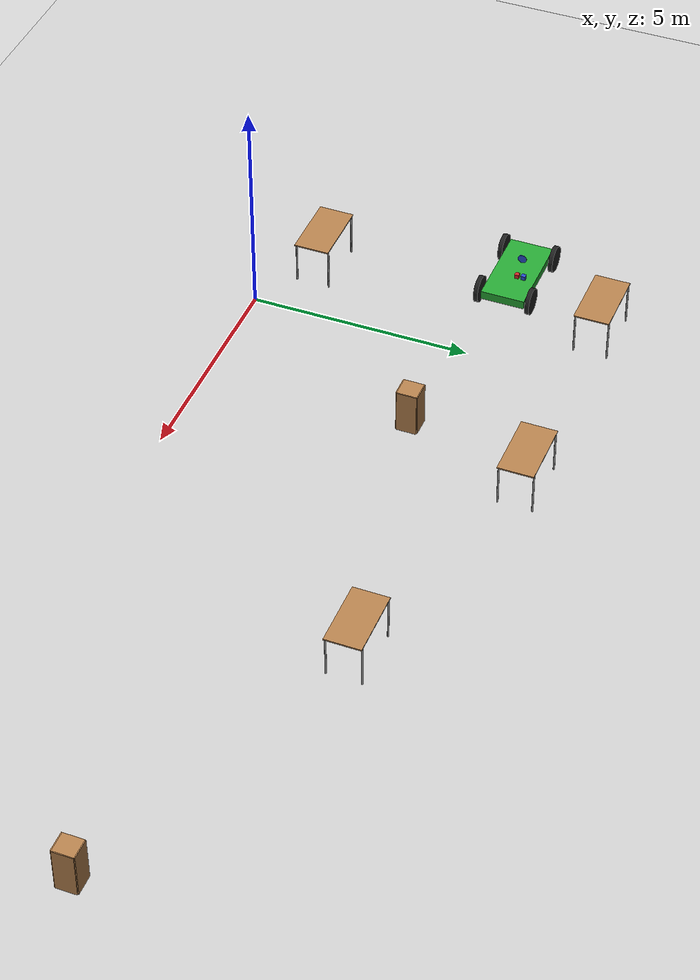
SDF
<sdf version="1.6">
 <world name="default">
  <model name="ground_plane">
   <static>1</static>
   <link name="link">
    <collision name="collision">
     <geometry><plane><normal>0 0 1</normal><size>100 100</size></plane></geometry>
     <surface>
      <contact><collide_bitmask>65535</collide_bitmask></contact>
      <friction><ode><mu>100</mu><mu2>50</mu2></ode></friction>
     </surface>
    </collision>
    <visual name="visual">
     <cast_shadows>0</cast_shadows>
     <geometry><plane><normal>0 0 1</normal><size>100 100</size></plane></geometry>
     <material>
      <script><uri>file://media/materials/scripts/gazebo.material</uri><name>Gazebo/Grey</name></script>
     </material>
    </visual>
   </link>
  </model>
  <model name="table">
   <static>1</static>
   <link name="link">
    <collision name="surface">
     <pose>0 0 1 0 -0 0</pose>
     <geometry><box><size>1.5 0.8 0.03</size></box></geometry>
     <surface><friction><ode><mu>0.6</mu><mu2>0.6</mu2></ode></friction></surface>
    </collision>
    <visual name="visual1">
     <pose>0 0 1 0 -0 0</pose>
     <geometry><box><size>1.5 0.8 0.03</size></box></geometry>
     <material>
      <script><uri>file://media/materials/scripts/gazebo.material</uri><name>Gazebo/Wood</name></script>
     </material>
    </visual>
    <collision name="front_left_leg">
     <pose>0.68 0.38 0.5 0 -0 0</pose>
     <geometry><cylinder><radius>0.02</radius><length>1</length></cylinder></geometry>
    </collision>
    <visual name="front_left_leg">
     <pose>0.68 0.38 0.5 0 -0 0</pose>
     <geometry><cylinder><radius>0.02</radius><length>1</length></cylinder></geometry>
     <material>
      <script><uri>file://media/materials/scripts/gazebo.material</uri><name>Gazebo/Grey</name></script>
     </material>
    </visual>
    <collision name="front_right_leg">
     <pose>0.68 -0.38 0.5 0 -0 0</pose>
     <geometry><cylinder><radius>0.02</radius><length>1</length></cylinder></geometry>
    </collision>
    <visual name="front_right_leg">
     <pose>0.68 -0.38 0.5 0 -0 0</pose>
     <geometry><cylinder><radius>0.02</radius><length>1</length></cylinder></geometry>
     <material>
      <script><uri>file://media/materials/scripts/gazebo.material</uri><name>Gazebo/Grey</name></script>
     </material>
    </visual>
    <collision name="back_right_leg">
     <pose>-0.68 -0.38 0.5 0 -0 0</pose>
     <geometry><cylinder><radius>0.02</radius><length>1</length></cylinder></geometry>
    </collision>
    <visual name="back_right_leg">
     <pose>-0.68 -0.38 0.5 0 -0 0</pose>
     <geometry><cylinder><radius>0.02</radius><length>1</length></cylinder></geometry>
     <material>
      <script><uri>file://media/materials/scripts/gazebo.material</uri><name>Gazebo/Grey</name></script>
     </material>
    </visual>
    <collision name="back_left_leg">
     <pose>-0.68 0.38 0.5 0 -0 0</pose>
     <geometry><cylinder><radius>0.02</radius><length>1</length></cylinder></geometry>
    </collision>
    <visual name="back_left_leg">
     <pose>-0.68 0.38 0.5 0 -0 0</pose>
     <geometry><cylinder><radius>0.02</radius><length>1</length></cylinder></geometry>
     <material>
      <script><uri>file://media/materials/scripts/gazebo.material</uri><name>Gazebo/Grey</name></script>
     </material>
    </visual>
   </link>
   <pose>9.1892 6.14459 0 0 -0 0</pose>
  </model>
  <model name="table_0">
   <static>1</static>
   <link name="link">
    <collision name="surface">
     <pose>0 0 1 0 -0 0</pose>
     <geometry><box><size>1.5 0.8 0.03</size></box></geometry>
     <surface><friction><ode><mu>0.6</mu><mu2>0.6</mu2></ode></friction></surface>
    </collision>
    <visual name="visual1">
     <pose>0 0 1 0 -0 0</pose>
     <geometry><box><size>1.5 0.8 0.03</size></box></geometry>
     <material>
      <script><uri>file://media/materials/scripts/gazebo.material</uri><name>Gazebo/Wood</name></script>
     </material>
    </visual>
    <collision name="front_left_leg">
     <pose>0.68 0.38 0.5 0 -0 0</pose>
     <geometry><cylinder><radius>0.02</radius><length>1</length></cylinder></geometry>
    </collision>
    <visual name="front_left_leg">
     <pose>0.68 0.38 0.5 0 -0 0</pose>
     <geometry><cylinder><radius>0.02</radius><length>1</length></cylinder></geometry>
     <material>
      <script><uri>file://media/materials/scripts/gazebo.material</uri><name>Gazebo/Grey</name></script>
     </material>
    </visual>
    <collision name="front_right_leg">
     <pose>0.68 -0.38 0.5 0 -0 0</pose>
     <geometry><cylinder><radius>0.02</radius><length>1</length></cylinder></geometry>
    </collision>
    <visual name="front_right_leg">
     <pose>0.68 -0.38 0.5 0 -0 0</pose>
     <geometry><cylinder><radius>0.02</radius><length>1</length></cylinder></geometry>
     <material>
      <script><uri>file://media/materials/scripts/gazebo.material</uri><name>Gazebo/Grey</name></script>
     </material>
    </visual>
    <collision name="back_right_leg">
     <pose>-0.68 -0.38 0.5 0 -0 0</pose>
     <geometry><cylinder><radius>0.02</radius><length>1</length></cylinder></geometry>
    </collision>
    <visual name="back_right_leg">
     <pose>-0.68 -0.38 0.5 0 -0 0</pose>
     <geometry><cylinder><radius>0.02</radius><length>1</length></cylinder></geometry>
     <material>
      <script><uri>file://media/materials/scripts/gazebo.material</uri><name>Gazebo/Grey</name></script>
     </material>
    </visual>
    <collision name="back_left_leg">
     <pose>-0.68 0.38 0.5 0 -0 0</pose>
     <geometry><cylinder><radius>0.02</radius><length>1</length></cylinder></geometry>
    </collision>
    <visual name="back_left_leg">
     <pose>-0.68 0.38 0.5 0 -0 0</pose>
     <geometry><cylinder><radius>0.02</radius><length>1</length></cylinder></geometry>
     <material>
      <script><uri>file://media/materials/scripts/gazebo.material</uri><name>Gazebo/Grey</name></script>
     </material>
    </visual>
   </link>
   <pose>3.46425 7.5995 0 0 -0 0</pose>
  </model>
  <model name="table_1">
   <static>1</static>
   <link name="link">
    <collision name="surface">
     <pose>0 0 1 0 -0 0</pose>
     <geometry><box><size>1.5 0.8 0.03</size></box></geometry>
     <surface><friction><ode><mu>0.6</mu><mu2>0.6</mu2></ode></friction></surface>
    </collision>
    <visual name="visual1">
     <pose>0 0 1 0 -0 0</pose>
     <geometry><box><size>1.5 0.8 0.03</size></box></geometry>
     <material>
      <script><uri>file://media/materials/scripts/gazebo.material</uri><name>Gazebo/Wood</name></script>
     </material>
    </visual>
    <collision name="front_left_leg">
     <pose>0.68 0.38 0.5 0 -0 0</pose>
     <geometry><cylinder><radius>0.02</radius><length>1</length></cylinder></geometry>
    </collision>
    <visual name="front_left_leg">
     <pose>0.68 0.38 0.5 0 -0 0</pose>
     <geometry><cylinder><radius>0.02</radius><length>1</length></cylinder></geometry>
     <material>
      <script><uri>file://media/materials/scripts/gazebo.material</uri><name>Gazebo/Grey</name></script>
     </material>
    </visual>
    <collision name="front_right_leg">
     <pose>0.68 -0.38 0.5 0 -0 0</pose>
     <geometry><cylinder><radius>0.02</radius><length>1</length></cylinder></geometry>
    </collision>
    <visual name="front_right_leg">
     <pose>0.68 -0.38 0.5 0 -0 0</pose>
     <geometry><cylinder><radius>0.02</radius><length>1</length></cylinder></geometry>
     <material>
      <script><uri>file://media/materials/scripts/gazebo.material</uri><name>Gazebo/Grey</name></script>
     </material>
    </visual>
    <collision name="back_right_leg">
     <pose>-0.68 -0.38 0.5 0 -0 0</pose>
     <geometry><cylinder><radius>0.02</radius><length>1</length></cylinder></geometry>
    </collision>
    <visual name="back_right_leg">
     <pose>-0.68 -0.38 0.5 0 -0 0</pose>
     <geometry><cylinder><radius>0.02</radius><length>1</length></cylinder></geometry>
     <material>
      <script><uri>file://media/materials/scripts/gazebo.material</uri><name>Gazebo/Grey</name></script>
     </material>
    </visual>
    <collision name="back_left_leg">
     <pose>-0.68 0.38 0.5 0 -0 0</pose>
     <geometry><cylinder><radius>0.02</radius><length>1</length></cylinder></geometry>
    </collision>
    <visual name="back_left_leg">
     <pose>-0.68 0.38 0.5 0 -0 0</pose>
     <geometry><cylinder><radius>0.02</radius><length>1</length></cylinder></geometry>
     <material>
      <script><uri>file://media/materials/scripts/gazebo.material</uri><name>Gazebo/Grey</name></script>
     </material>
    </visual>
   </link>
   <pose>-1.66816 7.51527 0 0 -0 0</pose>
  </model>
  <model name="table_2">
   <static>1</static>
   <link name="link">
    <collision name="surface">
     <pose>0 0 1 0 -0 0</pose>
     <geometry><box><size>1.5 0.8 0.03</size></box></geometry>
     <surface><friction><ode><mu>0.6</mu><mu2>0.6</mu2></ode></friction></surface>
    </collision>
    <visual name="visual1">
     <pose>0 0 1 0 -0 0</pose>
     <geometry><box><size>1.5 0.8 0.03</size></box></geometry>
     <material>
      <script><uri>file://media/materials/scripts/gazebo.material</uri><name>Gazebo/Wood</name></script>
     </material>
    </visual>
    <collision name="front_left_leg">
     <pose>0.68 0.38 0.5 0 -0 0</pose>
     <geometry><cylinder><radius>0.02</radius><length>1</length></cylinder></geometry>
    </collision>
    <visual name="front_left_leg">
     <pose>0.68 0.38 0.5 0 -0 0</pose>
     <geometry><cylinder><radius>0.02</radius><length>1</length></cylinder></geometry>
     <material>
      <script><uri>file://media/materials/scripts/gazebo.material</uri><name>Gazebo/Grey</name></script>
     </material>
    </visual>
    <collision name="front_right_leg">
     <pose>0.68 -0.38 0.5 0 -0 0</pose>
     <geometry><cylinder><radius>0.02</radius><length>1</length></cylinder></geometry>
    </collision>
    <visual name="front_right_leg">
     <pose>0.68 -0.38 0.5 0 -0 0</pose>
     <geometry><cylinder><radius>0.02</radius><length>1</length></cylinder></geometry>
     <material>
      <script><uri>file://media/materials/scripts/gazebo.material</uri><name>Gazebo/Grey</name></script>
     </material>
    </visual>
    <collision name="back_right_leg">
     <pose>-0.68 -0.38 0.5 0 -0 0</pose>
     <geometry><cylinder><radius>0.02</radius><length>1</length></cylinder></geometry>
    </collision>
    <visual name="back_right_leg">
     <pose>-0.68 -0.38 0.5 0 -0 0</pose>
     <geometry><cylinder><radius>0.02</radius><length>1</length></cylinder></geometry>
     <material>
      <script><uri>file://media/materials/scripts/gazebo.material</uri><name>Gazebo/Grey</name></script>
     </material>
    </visual>
    <collision name="back_left_leg">
     <pose>-0.68 0.38 0.5 0 -0 0</pose>
     <geometry><cylinder><radius>0.02</radius><length>1</length></cylinder></geometry>
    </collision>
    <visual name="back_left_leg">
     <pose>-0.68 0.38 0.5 0 -0 0</pose>
     <geometry><cylinder><radius>0.02</radius><length>1</length></cylinder></geometry>
     <material>
      <script><uri>file://media/materials/scripts/gazebo.material</uri><name>Gazebo/Grey</name></script>
     </material>
    </visual>
   </link>
   <pose>-1.69244 0.969496 0 0 -0 0</pose>
  </model>
  <model name="cabinet">
   <static>1</static>
   <link name="cabinet_bottom_plate">
    <inertial>
     <pose>0 0 -1 0 -0 0</pose>
     <inertia><ixx>2.05</ixx><ixy>0</ixy><ixz>0</ixz><iyy>2.05</iyy><iyz>0</iyz><izz>2.05</izz></inertia>
     <mass>25</mass>
    </inertial>
    <collision name="cabinet_bottom_plate_geom">
     <pose>0 0 0.01 0 -0 0</pose>
     <geometry><box><size>0.45 0.45 0.02</size></box></geometry>
    </collision>
    <visual name="cabinet_bottom_plate_geom_visual">
     <pose>0 0 0.01 0 -0 0</pose>
     <geometry><box><size>0.45 0.45 0.02</size></box></geometry>
     <material>
      <script><uri>file://media/materials/scripts/gazebo.material</uri><name>Gazebo/Wood</name></script>
     </material>
    </visual>
    <collision name="cabinet_bottom_plate_geom_cabinet_back_plate">
     <pose>0.235 0 0.51 0 -0 0</pose>
     <geometry><box><size>0.02 0.45 1.02</size></box></geometry>
    </collision>
    <visual name="cabinet_bottom_plate_geom_cabinet_back_plate_visual">
     <pose>0.235 0 0.51 0 -0 0</pose>
     <geometry><box><size>0.02 0.45 1.02</size></box></geometry>
     <material>
      <script><uri>file://media/materials/scripts/gazebo.material</uri><name>Gazebo/Wood</name></script>
     </material>
    </visual>
    <collision name="cabinet_bottom_plate_geom_cabinet_left_plate">
     <pose>0 0.235 0.51 0 -0 0</pose>
     <geometry><box><size>0.45 0.02 1.02</size></box></geometry>
    </collision>
    <visual name="cabinet_bottom_plate_geom_cabinet_left_plate_visual">
     <pose>0 0.235 0.51 0 -0 0</pose>
     <geometry><box><size>0.45 0.02 1.02</size></box></geometry>
     <material>
      <script><uri>file://media/materials/scripts/gazebo.material</uri><name>Gazebo/Wood</name></script>
     </material>
    </visual>
    <collision name="cabinet_bottom_plate_geom_cabinet_middle_plate">
     <pose>0 0 0.51 0 -0 0</pose>
     <geometry><box><size>0.45 0.45 0.02</size></box></geometry>
    </collision>
    <visual name="cabinet_bottom_plate_geom_cabinet_middle_plate_visual">
     <pose>0 0 0.51 0 -0 0</pose>
     <geometry><box><size>0.45 0.45 0.02</size></box></geometry>
     <material>
      <script><uri>file://media/materials/scripts/gazebo.material</uri><name>Gazebo/Wood</name></script>
     </material>
    </visual>
    <collision name="cabinet_bottom_plate_geom_cabinet_right_plate">
     <pose>0 -0.235 0.51 0 -0 0</pose>
     <geometry><box><size>0.45 0.02 1.02</size></box></geometry>
    </collision>
    <visual name="cabinet_bottom_plate_geom_cabinet_right_plate_visual">
     <pose>0 -0.235 0.51 0 -0 0</pose>
     <geometry><box><size>0.45 0.02 1.02</size></box></geometry>
     <material>
      <script><uri>file://media/materials/scripts/gazebo.material</uri><name>Gazebo/Wood</name></script>
     </material>
    </visual>
    <collision name="cabinet_bottom_plate_geom_cabinet_top_plate">
     <pose>0 0 1.01 0 -0 0</pose>
     <geometry><box><size>0.45 0.45 0.02</size></box></geometry>
    </collision>
    <visual name="cabinet_bottom_plate_geom_cabinet_top_plate_visual">
     <pose>0 0 1.01 0 -0 0</pose>
     <geometry><box><size>0.45 0.45 0.02</size></box></geometry>
     <material>
      <script><uri>file://media/materials/scripts/gazebo.material</uri><name>Gazebo/Wood</name></script>
     </material>
    </visual>
   </link>
   <pose>16.2359 3.47338 0 0 -0 0</pose>
  </model>
  <model name="cabinet_1">
   <static>1</static>
   <link name="cabinet_bottom_plate">
    <inertial>
     <pose>0 0 -1 0 -0 0</pose>
     <inertia><ixx>2.05</ixx><ixy>0</ixy><ixz>0</ixz><iyy>2.05</iyy><iyz>0</iyz><izz>2.05</izz></inertia>
     <mass>25</mass>
    </inertial>
    <collision name="cabinet_bottom_plate_geom">
     <pose>0 0 0.01 0 -0 0</pose>
     <geometry><box><size>0.45 0.45 0.02</size></box></geometry>
    </collision>
    <visual name="cabinet_bottom_plate_geom_visual">
     <pose>0 0 0.01 0 -0 0</pose>
     <geometry><box><size>0.45 0.45 0.02</size></box></geometry>
     <material>
      <script><uri>file://media/materials/scripts/gazebo.material</uri><name>Gazebo/Wood</name></script>
     </material>
    </visual>
    <collision name="cabinet_bottom_plate_geom_cabinet_back_plate">
     <pose>0.235 0 0.51 0 -0 0</pose>
     <geometry><box><size>0.02 0.45 1.02</size></box></geometry>
    </collision>
    <visual name="cabinet_bottom_plate_geom_cabinet_back_plate_visual">
     <pose>0.235 0 0.51 0 -0 0</pose>
     <geometry><box><size>0.02 0.45 1.02</size></box></geometry>
     <material>
      <script><uri>file://media/materials/scripts/gazebo.material</uri><name>Gazebo/Wood</name></script>
     </material>
    </visual>
    <collision name="cabinet_bottom_plate_geom_cabinet_left_plate">
     <pose>0 0.235 0.51 0 -0 0</pose>
     <geometry><box><size>0.45 0.02 1.02</size></box></geometry>
    </collision>
    <visual name="cabinet_bottom_plate_geom_cabinet_left_plate_visual">
     <pose>0 0.235 0.51 0 -0 0</pose>
     <geometry><box><size>0.45 0.02 1.02</size></box></geometry>
     <material>
      <script><uri>file://media/materials/scripts/gazebo.material</uri><name>Gazebo/Wood</name></script>
     </material>
    </visual>
    <collision name="cabinet_bottom_plate_geom_cabinet_middle_plate">
     <pose>0 0 0.51 0 -0 0</pose>
     <geometry><box><size>0.45 0.45 0.02</size></box></geometry>
    </collision>
    <visual name="cabinet_bottom_plate_geom_cabinet_middle_plate_visual">
     <pose>0 0 0.51 0 -0 0</pose>
     <geometry><box><size>0.45 0.45 0.02</size></box></geometry>
     <material>
      <script><uri>file://media/materials/scripts/gazebo.material</uri><name>Gazebo/Wood</name></script>
     </material>
    </visual>
    <collision name="cabinet_bottom_plate_geom_cabinet_right_plate">
     <pose>0 -0.235 0.51 0 -0 0</pose>
     <geometry><box><size>0.45 0.02 1.02</size></box></geometry>
    </collision>
    <visual name="cabinet_bottom_plate_geom_cabinet_right_plate_visual">
     <pose>0 -0.235 0.51 0 -0 0</pose>
     <geometry><box><size>0.45 0.02 1.02</size></box></geometry>
     <material>
      <script><uri>file://media/materials/scripts/gazebo.material</uri><name>Gazebo/Wood</name></script>
     </material>
    </visual>
    <collision name="cabinet_bottom_plate_geom_cabinet_top_plate">
     <pose>0 0 1.01 0 -0 0</pose>
     <geometry><box><size>0.45 0.45 0.02</size></box></geometry>
    </collision>
    <visual name="cabinet_bottom_plate_geom_cabinet_top_plate_visual">
     <pose>0 0 1.01 0 -0 0</pose>
     <geometry><box><size>0.45 0.45 0.02</size></box></geometry>
     <material>
      <script><uri>file://media/materials/scripts/gazebo.material</uri><name>Gazebo/Wood</name></script>
     </material>
    </visual>
   </link>
   <pose>2.61051 4.70363 0 0 -0 0</pose>
  </model>
  <model name="car">
   <link name="chassis">
    <pose>0 0 0.3 0 -0 0</pose>
    <collision name="collision"><geometry><box><size>2 1 0.2</size></box></geometry></collision>
    <visual name="visual">
     <geometry><box><size>2 1 0.2</size></box></geometry>
     <material>
      <script><uri>file://media/materials/scripts/gazebo.material</uri><name>Gazebo/Green</name></script>
     </material>
    </visual>
    <inertial>
     <inertia><ixx>1</ixx><ixy>0</ixy><ixz>0</ixz><iyy>1</iyy><iyz>0</iyz><izz>1</izz></inertia>
     <mass>1</mass>
    </inertial>
   </link>
   <link name="front_left_wheel">
    <pose>0.8 0.6 0.3 -0 1.5707 1.5707</pose>
    <collision name="collision">
     <geometry><cylinder><radius>0.3</radius><length>0.1</length></cylinder></geometry>
    </collision>
    <visual name="visual">
     <geometry><cylinder><radius>0.3</radius><length>0.1</length></cylinder></geometry>
     <material>
      <script><uri>file://media/materials/scripts/gazebo.material</uri><name>Gazebo/Black</name></script>
     </material>
    </visual>
    <inertial>
     <inertia><ixx>1</ixx><ixy>0</ixy><ixz>0</ixz><iyy>1</iyy><iyz>0</iyz><izz>1</izz></inertia>
     <mass>1</mass>
    </inertial>
   </link>
   <link name="front_right_wheel">
    <pose>0.8 -0.6 0.3 -0 1.5707 1.5707</pose>
    <collision name="collision">
     <geometry><cylinder><radius>0.3</radius><length>0.1</length></cylinder></geometry>
    </collision>
    <visual name="visual">
     <geometry><cylinder><radius>0.3</radius><length>0.1</length></cylinder></geometry>
     <material>
      <script><uri>file://media/materials/scripts/gazebo.material</uri><name>Gazebo/Black</name></script>
     </material>
    </visual>
    <inertial>
     <inertia><ixx>1</ixx><ixy>0</ixy><ixz>0</ixz><iyy>1</iyy><iyz>0</iyz><izz>1</izz></inertia>
     <mass>1</mass>
    </inertial>
   </link>
   <link name="back_right_wheel">
    <pose>-0.8 -0.6 0.3 -0 1.5707 1.5707</pose>
    <collision name="collision">
     <geometry><cylinder><radius>0.3</radius><length>0.1</length></cylinder></geometry>
    </collision>
    <visual name="visual">
     <geometry><cylinder><radius>0.3</radius><length>0.1</length></cylinder></geometry>
     <material>
      <script><uri>file://media/materials/scripts/gazebo.material</uri><name>Gazebo/Black</name></script>
     </material>
    </visual>
    <inertial>
     <inertia><ixx>1</ixx><ixy>0</ixy><ixz>0</ixz><iyy>1</iyy><iyz>0</iyz><izz>1</izz></inertia>
     <mass>1</mass>
    </inertial>
   </link>
   <link name="back_left_wheel">
    <pose>-0.8 0.6 0.3 -0 1.5707 1.5707</pose>
    <collision name="collision">
     <geometry><cylinder><radius>0.3</radius><length>0.1</length></cylinder></geometry>
    </collision>
    <visual name="visual">
     <geometry><cylinder><radius>0.3</radius><length>0.1</length></cylinder></geometry>
     <material>
      <script><uri>file://media/materials/scripts/gazebo.material</uri><name>Gazebo/Black</name></script>
     </material>
    </visual>
    <inertial>
     <inertia><ixx>1</ixx><ixy>0</ixy><ixz>0</ixz><iyy>1</iyy><iyz>0</iyz><izz>1</izz></inertia>
     <mass>1</mass>
    </inertial>
   </link>
   <link name="gas_pedal">
    <pose>0.3 0.1 0.5 0 -0 0</pose>
    <collision name="collision"><geometry><box><size>0.1 0.1 0.1</size></box></geometry></collision>
    <visual name="visual">
     <geometry><box><size>0.1 0.1 0.1</size></box></geometry>
     <material>
      <script><uri>file://media/materials/scripts/gazebo.material</uri><name>Gazebo/Red</name></script>
     </material>
    </visual>
    <inertial>
     <inertia><ixx>1</ixx><ixy>0</ixy><ixz>0</ixz><iyy>1</iyy><iyz>0</iyz><izz>1</izz></inertia>
     <mass>1</mass>
    </inertial>
   </link>
   <link name="brake_pedal">
    <pose>0.3 0.25 0.5 0 -0 0</pose>
    <collision name="collision"><geometry><box><size>0.1 0.1 0.1</size></box></geometry></collision>
    <visual name="visual">
     <geometry><box><size>0.1 0.1 0.1</size></box></geometry>
     <material>
      <script><uri>file://media/materials/scripts/gazebo.material</uri><name>Gazebo/Blue</name></script>
     </material>
    </visual>
    <inertial>
     <inertia><ixx>1</ixx><ixy>0</ixy><ixz>0</ixz><iyy>1</iyy><iyz>0</iyz><izz>1</izz></inertia>
     <mass>1</mass>
    </inertial>
   </link>
   <link name="steering_wheel">
    <pose>0.3 0.2 1 0 1.5707 0</pose>
    <collision name="collision">
     <geometry><cylinder><radius>0.1</radius><length>0.01</length></cylinder></geometry>
    </collision>
    <visual name="visual">
     <geometry><cylinder><radius>0.1</radius><length>0.01</length></cylinder></geometry>
     <material>
      <script><uri>file://media/materials/scripts/gazebo.material</uri><name>Gazebo/Blue</name></script>
     </material>
    </visual>
    <inertial>
     <inertia><ixx>1</ixx><ixy>0</ixy><ixz>0</ixz><iyy>1</iyy><iyz>0</iyz><izz>1</izz></inertia>
     <mass>1</mass>
    </inertial>
   </link>
   <joint name="gas_joint" type="prismatic">
    <parent>chassis</parent>
    <child>gas_pedal</child>
    <axis>
     <xyz>1 0 0</xyz>
     <limit><lower>0</lower><upper>0.2</upper></limit>
     <use_parent_model_frame>1</use_parent_model_frame>
     <dynamics><spring_reference>0</spring_reference><spring_stiffness>0</spring_stiffness></dynamics>
    </axis>
   </joint>
   <joint name="brake_joint" type="prismatic">
    <parent>chassis</parent>
    <child>brake_pedal</child>
    <axis>
     <xyz>1 0 0</xyz>
     <limit><lower>0</lower><upper>0.2</upper></limit>
     <use_parent_model_frame>1</use_parent_model_frame>
     <dynamics><spring_reference>0</spring_reference><spring_stiffness>0</spring_stiffness></dynamics>
    </axis>
   </joint>
   <joint name="steering_joint" type="revolute">
    <parent>chassis</parent>
    <child>steering_wheel</child>
    <axis>
     <xyz>1 0 0</xyz>
     <limit><lower>-7.853</lower><upper>7.853</upper></limit>
     <use_parent_model_frame>1</use_parent_model_frame>
     <dynamics><spring_reference>0</spring_reference><spring_stiffness>0</spring_stiffness></dynamics>
    </axis>
   </joint>
   <joint name="front_left_joint" type="revolute2">
    <parent>chassis</parent>
    <child>front_left_wheel</child>
    <axis>
     <xyz>0 0 1</xyz>
     <limit><lower>8.59151e-06</lower><upper>8.59151e-06</upper></limit>
     <use_parent_model_frame>1</use_parent_model_frame>
     <dynamics><spring_reference>0</spring_reference><spring_stiffness>0</spring_stiffness></dynamics>
    </axis>
    <axis2>
     <xyz>0 1 0</xyz>
     <use_parent_model_frame>1</use_parent_model_frame>
     <dynamics><spring_reference>0</spring_reference><spring_stiffness>0</spring_stiffness></dynamics>
    </axis2>
    <physics><ode><limit><cfm>0</cfm><erp>0.9</erp></limit></ode></physics>
   </joint>
   <joint name="front_right_joint" type="revolute2">
    <parent>chassis</parent>
    <child>front_right_wheel</child>
    <axis>
     <xyz>0 0 1</xyz>
     <limit><lower>8.59151e-06</lower><upper>8.59151e-06</upper></limit>
     <use_parent_model_frame>1</use_parent_model_frame>
     <dynamics><spring_reference>0</spring_reference><spring_stiffness>0</spring_stiffness></dynamics>
    </axis>
    <axis2>
     <xyz>0 1 0</xyz>
     <use_parent_model_frame>1</use_parent_model_frame>
     <dynamics><spring_reference>0</spring_reference><spring_stiffness>0</spring_stiffness></dynamics>
    </axis2>
    <physics><ode><limit><cfm>0</cfm><erp>0.9</erp></limit></ode></physics>
   </joint>
   <joint name="back_right_joint" type="revolute2">
    <parent>chassis</parent>
    <child>back_right_wheel</child>
    <axis>
     <xyz>0 0 1</xyz>
     <limit><lower>0</lower><upper>0</upper></limit>
     <use_parent_model_frame>1</use_parent_model_frame>
     <dynamics><spring_reference>0</spring_reference><spring_stiffness>0</spring_stiffness></dynamics>
    </axis>
    <axis2>
     <xyz>0 1 0</xyz>
     <use_parent_model_frame>1</use_parent_model_frame>
     <dynamics><spring_reference>0</spring_reference><spring_stiffness>0</spring_stiffness></dynamics>
    </axis2>
    <physics><ode><limit><cfm>0</cfm><erp>0.9</erp></limit></ode></physics>
   </joint>
   <joint name="back_left_joint" type="revolute2">
    <parent>chassis</parent>
    <child>back_left_wheel</child>
    <axis>
     <xyz>0 0 1</xyz>
     <limit><lower>0</lower><upper>0</upper></limit>
     <use_parent_model_frame>1</use_parent_model_frame>
     <dynamics><spring_reference>0</spring_reference><spring_stiffness>0</spring_stiffness></dynamics>
    </axis>
    <axis2>
     <xyz>0 1 0</xyz>
     <use_parent_model_frame>1</use_parent_model_frame>
     <dynamics><spring_reference>0</spring_reference><spring_stiffness>0</spring_stiffness></dynamics>
    </axis2>
    <physics><ode><limit><cfm>0</cfm><erp>0.9</erp></limit></ode></physics>
   </joint>
   <plugin name="vehicle" filename="libVehiclePlugin.so">
    <front_left>front_left_joint</front_left>
    <front_right>front_right_joint</front_right>
    <back_left>back_left_joint</back_left>
    <back_right>back_right_joint</back_right>
    <gas>gas_joint</gas>
    <brake>brake_joint</brake>
    <steering>steering_joint</steering>
    <front_power>10</front_power>
    <rear_power>10</rear_power>
    <tire_angle_range>0.5</tire_angle_range>
    <max_speed>10</max_speed>
    <aero_load>0.1</aero_load>
   </plugin>
   <pose>-2.66609 5.23278 -0.002615 -0.000273 0.000908 0.001046</pose>
  </model>
 </world>
</sdf>
